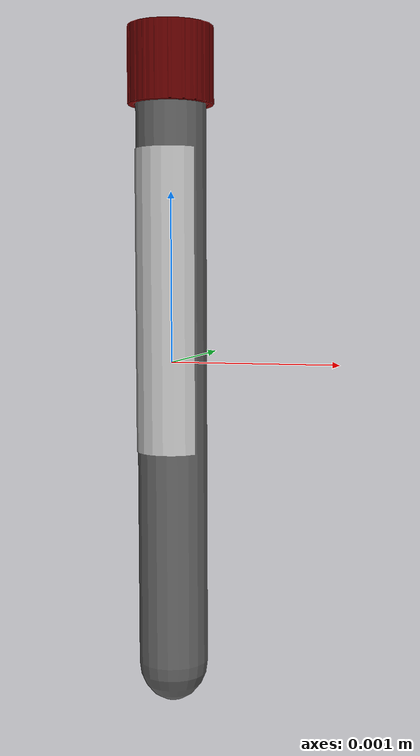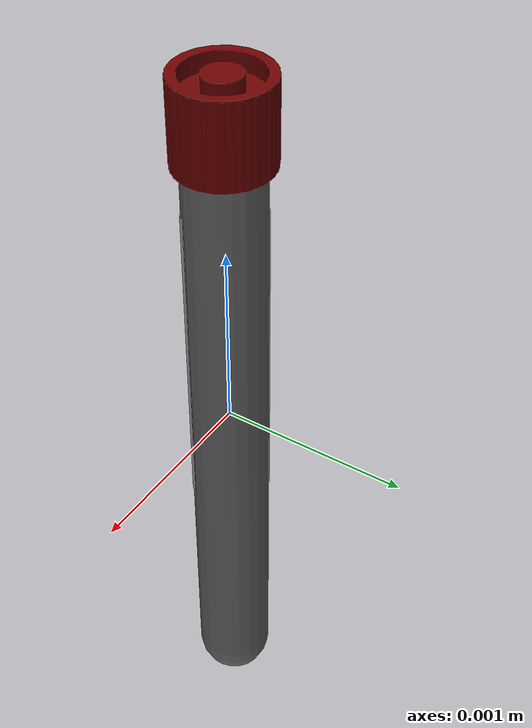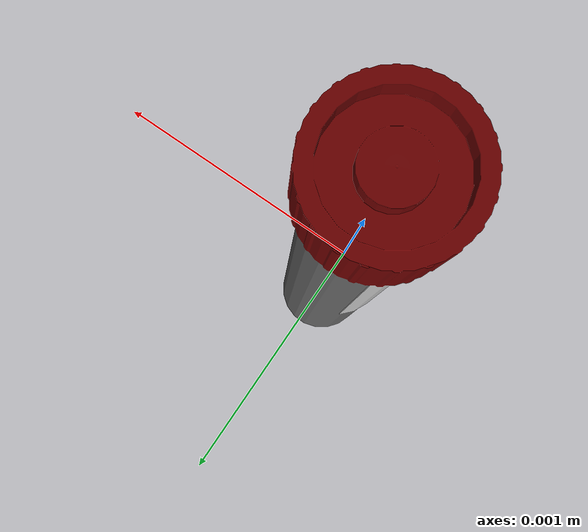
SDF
<?xml version='1.0'?>
<sdf version="1.4">
  <model name="tube">

    <static>false</static>
    <link name="link">
      <inertial>
        <pose>0 0. -0.1 0 0 0</pose>
        <mass>0.01</mass>
        <inertia>
          <ixx>0</ixx>
          <ixy>0</ixy>
          <ixz>0</ixz>
          <iyy>0</iyy>
          <iyz>0</iyz>
          <izz>0</izz>
        </inertia>
      </inertial>
      <collision name="collision">
        <geometry>
         <mesh>
          <uri>model://covid-tubes/meshes/single-tube.dae</uri>
          <scale>0.055 0.06 0.06</scale>
         </mesh>
        </geometry>
      </collision>
      <visual name="visual">
        <geometry>
         <mesh>
          <uri>model://covid-tubes/meshes/single-tube.dae</uri>
          <scale>0.05 0.05 0.05</scale>
         </mesh>
        </geometry>
	<material>
          <script>
            <uri>model://covid-tubes/materials/textures</uri>
            <name>Tubes/Diffuse</name>
          </script>
        </material>
      </visual>
    </link>
  </model>
</sdf>
